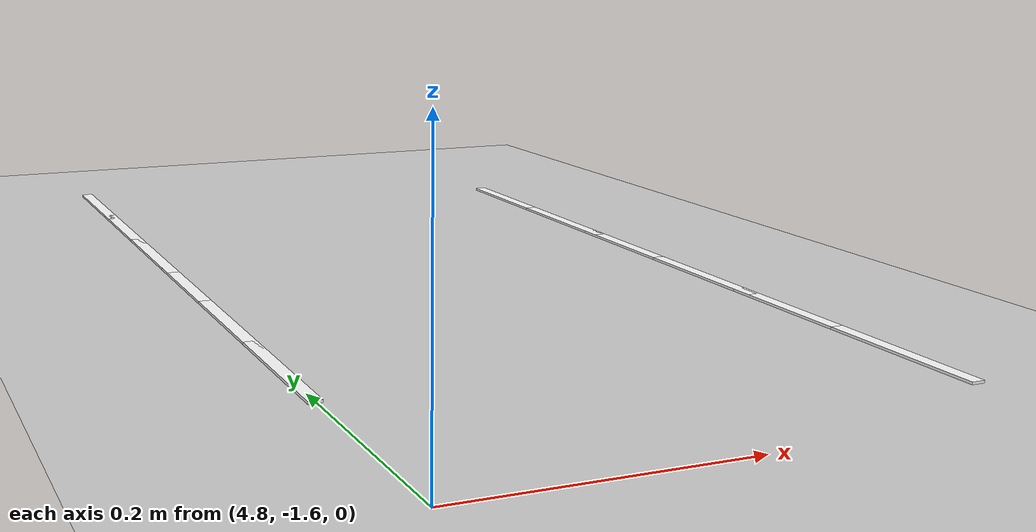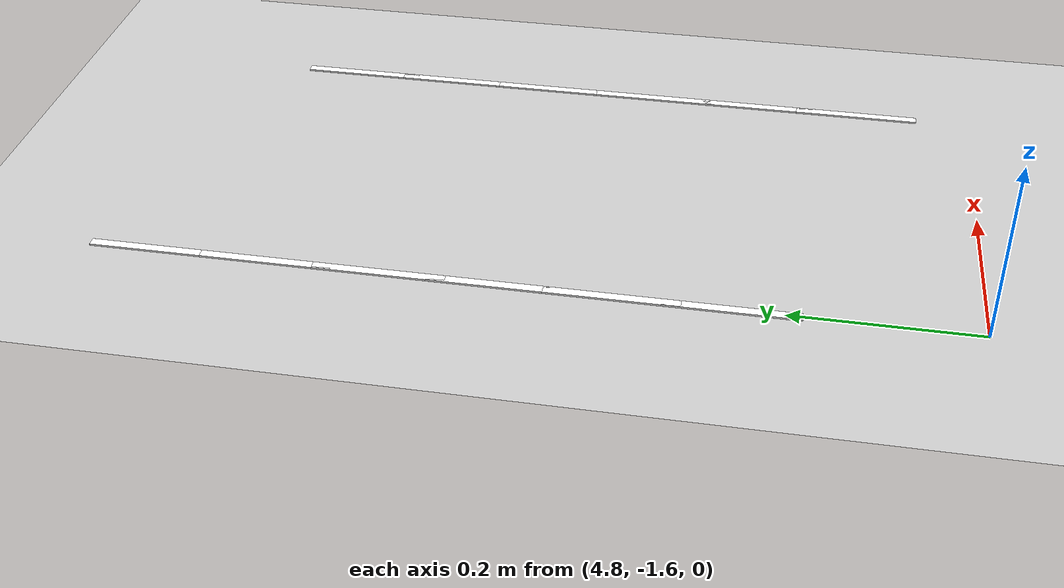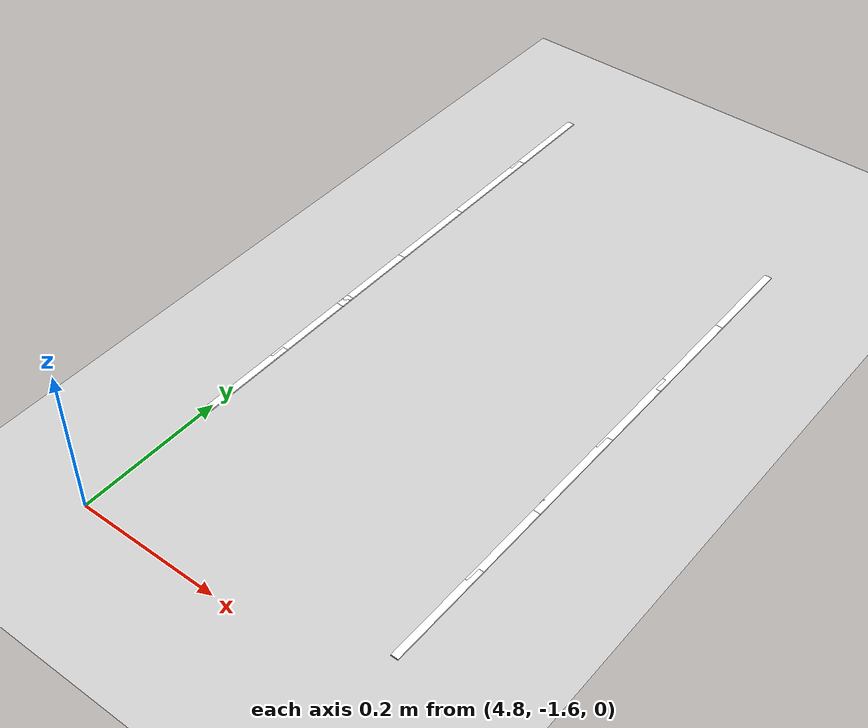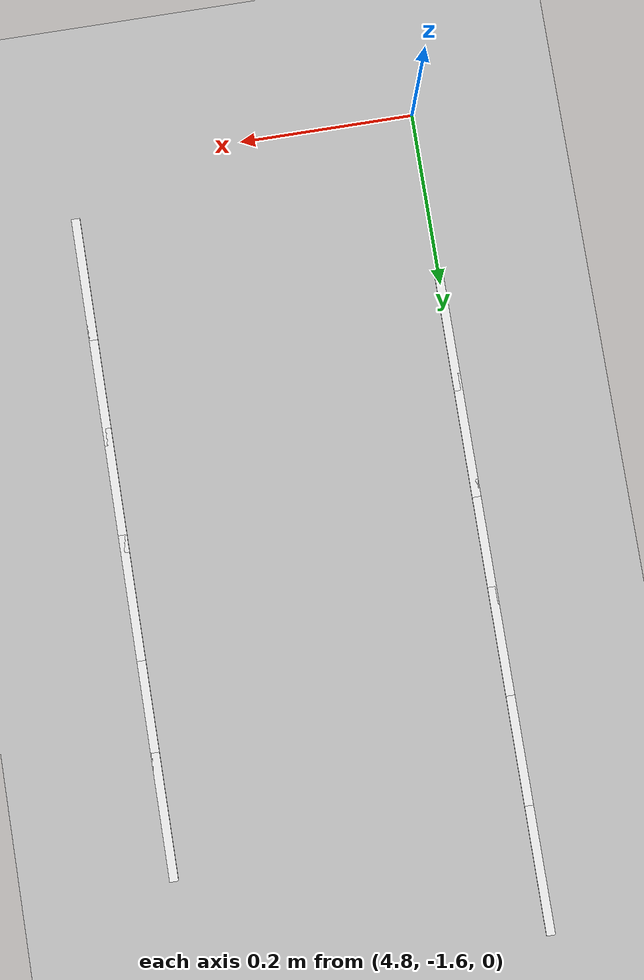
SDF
<sdf version="1.7">
 <world name="default">
  <model name="ground_plane">
   <static>1</static>
   <link name="link">
    <collision name="collision">
     <geometry><plane><normal>0 0 1</normal><size>100 100</size></plane></geometry>
     <surface>
      <contact><collide_bitmask>65535</collide_bitmask></contact>
      <friction><ode><mu>100</mu><mu2>50</mu2></ode></friction>
     </surface>
    </collision>
    <visual name="visual">
     <cast_shadows>0</cast_shadows>
     <geometry><plane><normal>0 0 1</normal><size>100 100</size></plane></geometry>
     <material>
      <script><uri>file://media/materials/scripts/gazebo.material</uri><name>Gazebo/Grey</name></script>
     </material>
    </visual>
   </link>
  </model>
  <model name="lane_line_right_112">
   <static>1</static>
   <link name="link">
    <pose>0 0 -0.004 0 -0 0</pose>
    <visual name="visual">
     <geometry><box><size>0.1424 0.01 0.01</size></box></geometry>
     <material><ambient>1 1 1 1</ambient><diffuse>1 1 1 1</diffuse></material>
    </visual>
    <collision name="collision"><geometry><box><size>0.1424 0.01 0.01</size></box></geometry></collision>
   </link>
   <pose>5.2 -1.46939 0 0 -0 1.5708</pose>
  </model>
  <model name="lane_line_left_113">
   <static>1</static>
   <link name="link">
    <pose>0 0 -0.004 0 -0 0</pose>
    <visual name="visual">
     <geometry><box><size>0.1424 0.01 0.01</size></box></geometry>
     <material><ambient>1 1 1 1</ambient><diffuse>1 1 1 1</diffuse></material>
    </visual>
    <collision name="collision"><geometry><box><size>0.1424 0.01 0.01</size></box></geometry></collision>
   </link>
   <pose>4.8 -1.34694 0 0 -0 1.5708</pose>
  </model>
  <model name="lane_line_right_113">
   <static>1</static>
   <link name="link">
    <pose>0 0 -0.004 0 -0 0</pose>
    <visual name="visual">
     <geometry><box><size>0.1424 0.01 0.01</size></box></geometry>
     <material><ambient>1 1 1 1</ambient><diffuse>1 1 1 1</diffuse></material>
    </visual>
    <collision name="collision"><geometry><box><size>0.1424 0.01 0.01</size></box></geometry></collision>
   </link>
   <pose>5.2 -1.34694 0 0 -0 1.5708</pose>
  </model>
  <model name="lane_line_left_114">
   <static>1</static>
   <link name="link">
    <pose>0 0 -0.004 0 -0 0</pose>
    <visual name="visual">
     <geometry><box><size>0.1424 0.01 0.01</size></box></geometry>
     <material><ambient>1 1 1 1</ambient><diffuse>1 1 1 1</diffuse></material>
    </visual>
    <collision name="collision"><geometry><box><size>0.1424 0.01 0.01</size></box></geometry></collision>
   </link>
   <pose>4.8 -1.22449 0 0 -0 1.5708</pose>
  </model>
  <model name="lane_line_right_114">
   <static>1</static>
   <link name="link">
    <pose>0 0 -0.004 0 -0 0</pose>
    <visual name="visual">
     <geometry><box><size>0.1424 0.01 0.01</size></box></geometry>
     <material><ambient>1 1 1 1</ambient><diffuse>1 1 1 1</diffuse></material>
    </visual>
    <collision name="collision"><geometry><box><size>0.1424 0.01 0.01</size></box></geometry></collision>
   </link>
   <pose>5.2 -1.22449 0 0 -0 1.5708</pose>
  </model>
  <model name="lane_line_left_115">
   <static>1</static>
   <link name="link">
    <pose>0 0 -0.004 0 -0 0</pose>
    <visual name="visual">
     <geometry><box><size>0.1424 0.01 0.01</size></box></geometry>
     <material><ambient>1 1 1 1</ambient><diffuse>1 1 1 1</diffuse></material>
    </visual>
    <collision name="collision"><geometry><box><size>0.1424 0.01 0.01</size></box></geometry></collision>
   </link>
   <pose>4.8 -1.10204 0 0 -0 1.5708</pose>
  </model>
  <model name="lane_line_right_115">
   <static>1</static>
   <link name="link">
    <pose>0 0 -0.004 0 -0 0</pose>
    <visual name="visual">
     <geometry><box><size>0.1424 0.01 0.01</size></box></geometry>
     <material><ambient>1 1 1 1</ambient><diffuse>1 1 1 1</diffuse></material>
    </visual>
    <collision name="collision"><geometry><box><size>0.1424 0.01 0.01</size></box></geometry></collision>
   </link>
   <pose>5.2 -1.10204 0 0 -0 1.5708</pose>
  </model>
  <model name="lane_line_left_116">
   <static>1</static>
   <link name="link">
    <pose>0 0 -0.004 0 -0 0</pose>
    <visual name="visual">
     <geometry><box><size>0.1424 0.01 0.01</size></box></geometry>
     <material><ambient>1 1 1 1</ambient><diffuse>1 1 1 1</diffuse></material>
    </visual>
    <collision name="collision"><geometry><box><size>0.1424 0.01 0.01</size></box></geometry></collision>
   </link>
   <pose>4.8 -0.979592 0 0 -0 1.5708</pose>
  </model>
  <model name="lane_line_right_116">
   <static>1</static>
   <link name="link">
    <pose>0 0 -0.004 0 -0 0</pose>
    <visual name="visual">
     <geometry><box><size>0.1424 0.01 0.01</size></box></geometry>
     <material><ambient>1 1 1 1</ambient><diffuse>1 1 1 1</diffuse></material>
    </visual>
    <collision name="collision"><geometry><box><size>0.1424 0.01 0.01</size></box></geometry></collision>
   </link>
   <pose>5.2 -0.979592 0 0 -0 1.5708</pose>
  </model>
  <model name="lane_line_left_117">
   <static>1</static>
   <link name="link">
    <pose>0 0 -0.004 0 -0 0</pose>
    <visual name="visual">
     <geometry><box><size>0.1424 0.01 0.01</size></box></geometry>
     <material><ambient>1 1 1 1</ambient><diffuse>1 1 1 1</diffuse></material>
    </visual>
    <collision name="collision"><geometry><box><size>0.1424 0.01 0.01</size></box></geometry></collision>
   </link>
   <pose>4.8 -0.857143 0 0 -0 1.5708</pose>
  </model>
  <model name="lane_line_right_117">
   <static>1</static>
   <link name="link">
    <pose>0 0 -0.004 0 -0 0</pose>
    <visual name="visual">
     <geometry><box><size>0.1424 0.01 0.01</size></box></geometry>
     <material><ambient>1 1 1 1</ambient><diffuse>1 1 1 1</diffuse></material>
    </visual>
    <collision name="collision"><geometry><box><size>0.1424 0.01 0.01</size></box></geometry></collision>
   </link>
   <pose>5.2 -0.857143 0 0 -0 1.5708</pose>
  </model>
  <model name="lane_line_left_118">
   <static>1</static>
   <link name="link">
    <pose>0 0 -0.004 0 -0 0</pose>
    <visual name="visual">
     <geometry><box><size>0.1424 0.01 0.01</size></box></geometry>
     <material><ambient>1 1 1 1</ambient><diffuse>1 1 1 1</diffuse></material>
    </visual>
    <collision name="collision"><geometry><box><size>0.1424 0.01 0.01</size></box></geometry></collision>
   </link>
   <pose>4.8 -0.734694 0 0 -0 1.5708</pose>
  </model>
 </world>
</sdf>
